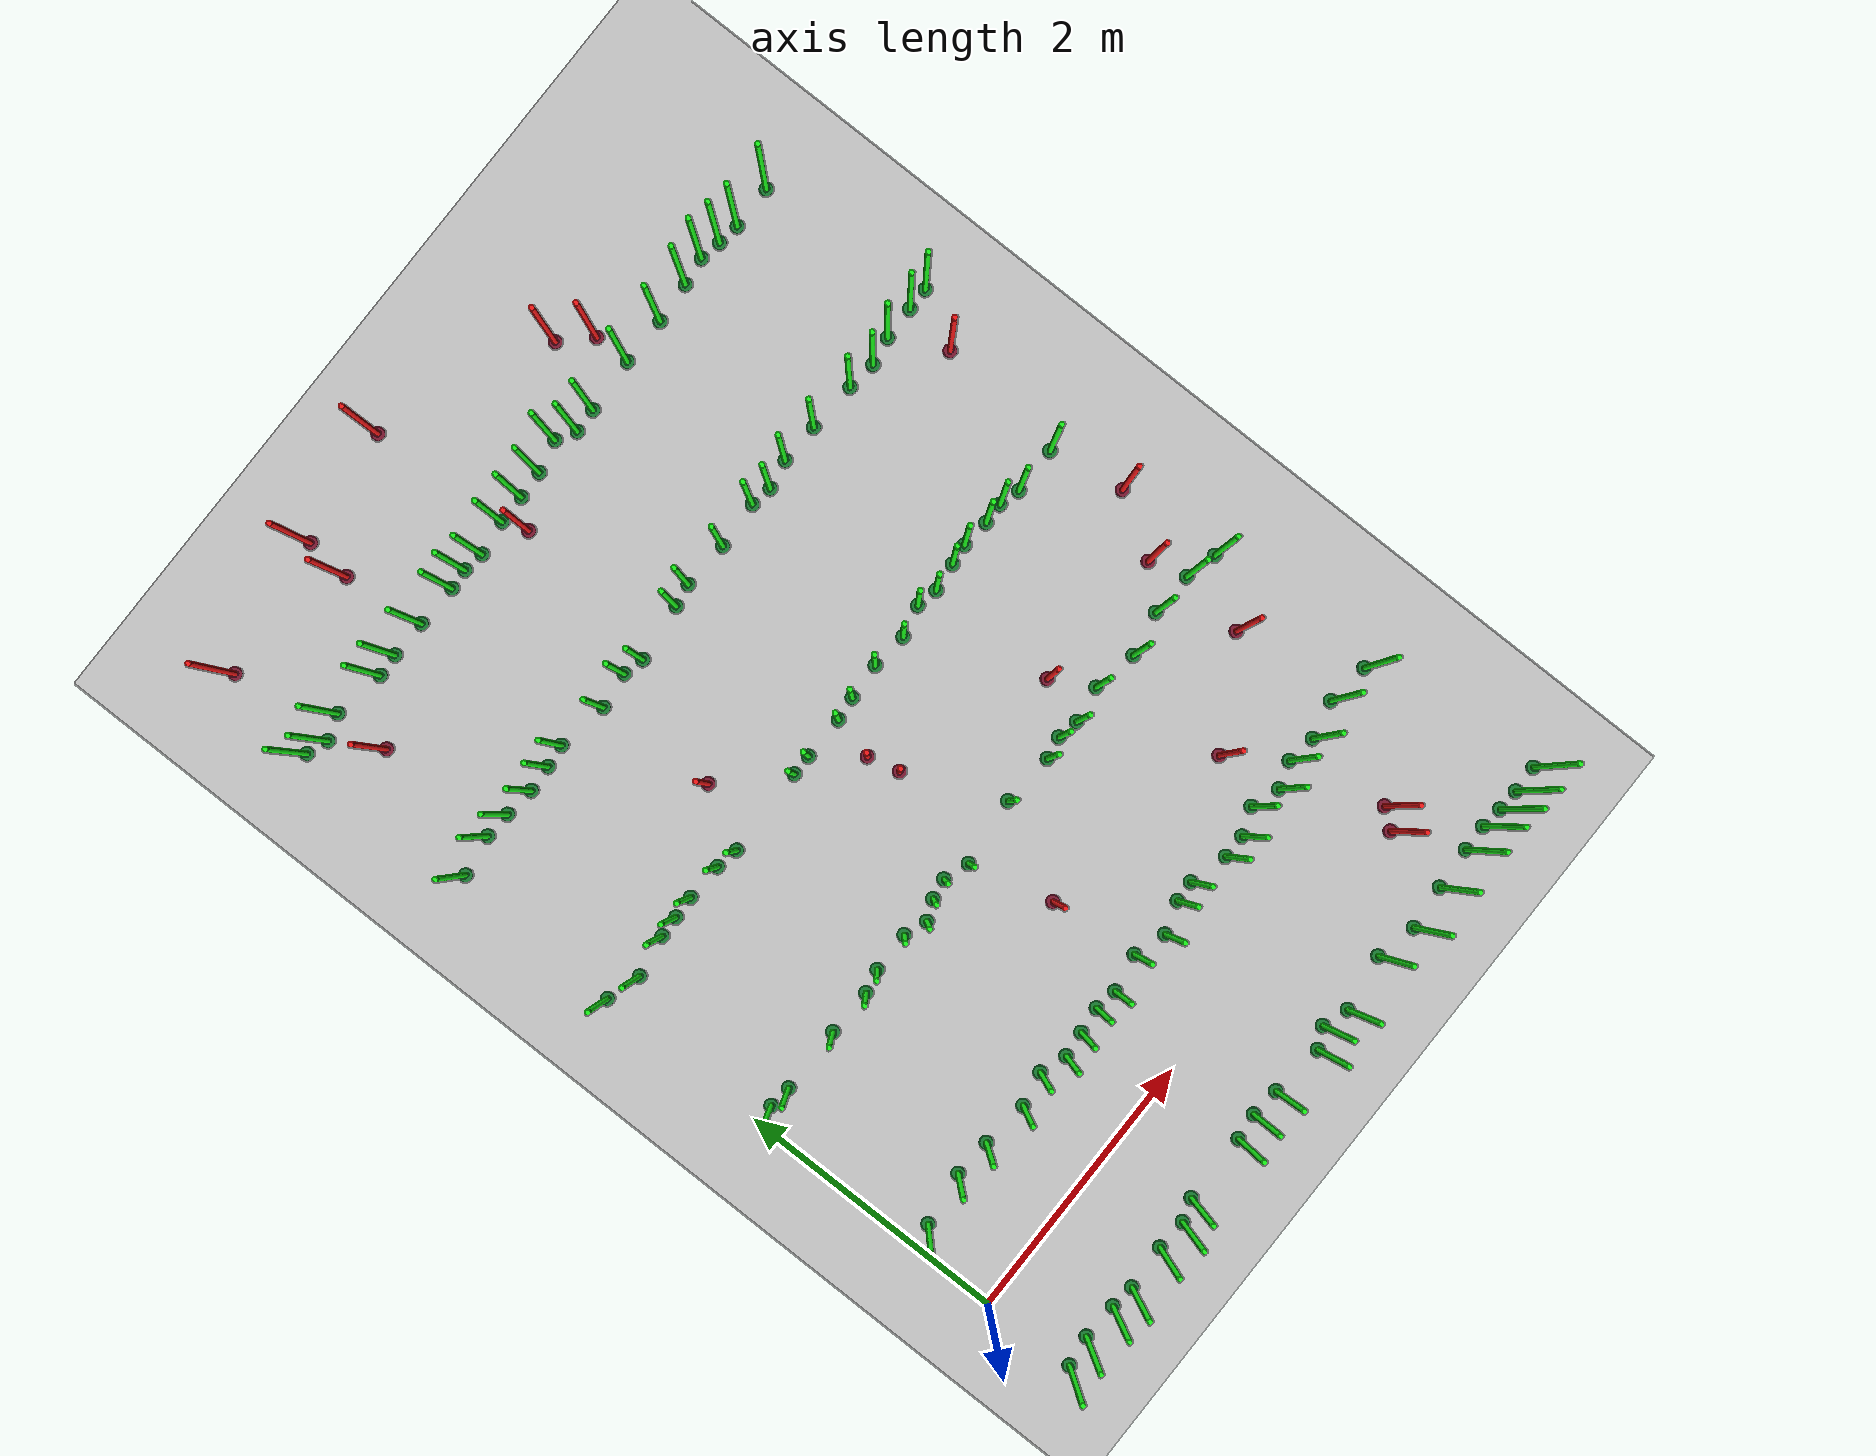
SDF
<sdf version="1.4">
 <world name="default">
  <include><uri>model://ground_plane</uri></include>
  <include><uri>model://sun</uri></include>
  <model name="plantgreen_0_1">
   <include><uri>model://plantgreen</uri></include>
   <pose>4.58638884047 -0.632924305931 0 0 0 0</pose>
  </model>
  <model name="plantgreen_0_2">
   <include><uri>model://plantgreen</uri></include>
   <pose>3.04990251096 -0.677343053647 0 0 0 0</pose>
  </model>
  <model name="plantgreen_0_4">
   <include><uri>model://plantgreen</uri></include>
   <pose>4.08292224134 -0.656828475842 0 0 0 0</pose>
  </model>
  <model name="plantgreen_0_5">
   <include><uri>model://plantgreen</uri></include>
   <pose>1.24277537879 -0.68476654569 0 0 0 0</pose>
  </model>
  <model name="plantgreen_0_7">
   <include><uri>model://plantgreen</uri></include>
   <pose>2.10647523491 -0.61410129636 0 0 0 0</pose>
  </model>
  <model name="plantgreen_0_9">
   <include><uri>model://plantgreen</uri></include>
   <pose>3.46152146136 -0.616740493605 0 0 0 0</pose>
  </model>
  <model name="plantgreen_0_10">
   <include><uri>model://plantgreen</uri></include>
   <pose>4.39014670274 -0.637603284323 0 0 0 0</pose>
  </model>
  <model name="plantgreen_0_11">
   <include><uri>model://plantgreen</uri></include>
   <pose>1.01525369746 -0.669760085934 0 0 0 0</pose>
  </model>
  <model name="plantgreen_0_14">
   <include><uri>model://plantgreen</uri></include>
   <pose>1.91346370611 -0.634758447583 0 0 0 0</pose>
  </model>
  <model name="plantgreen_0_16">
   <include><uri>model://plantgreen</uri></include>
   <pose>2.71403882308 -0.684665693558 0 0 0 0</pose>
  </model>
  <model name="plantgreen_0_18">
   <include><uri>model://plantgreen</uri></include>
   <pose>3.76025180287 -0.686493607441 0 0 0 0</pose>
  </model>
  <model name="plantgreen_0_21">
   <include><uri>model://plantgreen</uri></include>
   <pose>0.51066838098 -0.664701882412 0 0 0 0</pose>
  </model>
  <model name="plantgreen_0_23">
   <include><uri>model://plantgreen</uri></include>
   <pose>4.91010683227 -0.659971757715 0 0 0 0</pose>
  </model>
  <model name="plantgreen_0_26">
   <include><uri>model://plantgreen</uri></include>
   <pose>0.688967956885 -0.686746735415 0 0 0 0</pose>
  </model>
  <model name="plantgreen_0_27">
   <include><uri>model://plantgreen</uri></include>
   <pose>0.241065624145 -0.650282534506 0 0 0 0</pose>
  </model>
  <model name="plantgreen_0_31">
   <include><uri>model://plantgreen</uri></include>
   <pose>0.0183708667664 -0.68053280253 0 0 0 0</pose>
  </model>
  <model name="plantgreen_0_35">
   <include><uri>model://plantgreen</uri></include>
   <pose>4.74921922872 -0.652213403504 0 0 0 0</pose>
  </model>
  <model name="plantgreen_0_36">
   <include><uri>model://plantgreen</uri></include>
   <pose>1.40568710758 -0.631648553476 0 0 0 0</pose>
  </model>
  <model name="plantgreen_0_38">
   <include><uri>model://plantgreen</uri></include>
   <pose>2.3215394255 -0.634911119721 0 0 0 0</pose>
  </model>
  <model name="plantgreen_0_39">
   <include><uri>model://plantgreen</uri></include>
   <pose>2.86183952858 -0.612077400394 0 0 0 0</pose>
  </model>
  <model name="plantgreen_0_40">
   <include><uri>model://plantgreen</uri></include>
   <pose>5.10990452862 -0.654139514127 0 0 0 0</pose>
  </model>
  <model name="plantgreen_1_3">
   <include><uri>model://plantgreen</uri></include>
   <pose>0.563810435909 0.699440597573 0 0 0 0</pose>
  </model>
  <model name="plantgreen_1_5">
   <include><uri>model://plantgreen</uri></include>
   <pose>2.45347345788 0.679203140674 0 0 0 0</pose>
  </model>
  <model name="plantgreen_1_6">
   <include><uri>model://plantgreen</uri></include>
   <pose>1.19171325414 0.639142287754 0 0 0 0</pose>
  </model>
  <model name="plantgreen_1_8">
   <include><uri>model://plantgreen</uri></include>
   <pose>4.12620090517 0.664539253938 0 0 0 0</pose>
  </model>
  <model name="plantgreen_1_10">
   <include><uri>model://plantgreen</uri></include>
   <pose>3.07140674714 0.682277987979 0 0 0 0</pose>
  </model>
  <model name="plantgreen_1_11">
   <include><uri>model://plantgreen</uri></include>
   <pose>1.63229563706 0.617064051982 0 0 0 0</pose>
  </model>
  <model name="plantgreen_1_12">
   <include><uri>model://plantgreen</uri></include>
   <pose>3.52843498329 0.600474102138 0 0 0 0</pose>
  </model>
  <model name="plantgreen_1_13">
   <include><uri>model://plantgreen</uri></include>
   <pose>2.91640928709 0.673971403952 0 0 0 0</pose>
  </model>
  <model name="plantgreen_1_17">
   <include><uri>model://plantgreen</uri></include>
   <pose>1.43822415015 0.686914898581 0 0 0 0</pose>
  </model>
  <model name="plantgreen_1_18">
   <include><uri>model://plantgreen</uri></include>
   <pose>4.61684899354 0.694774414736 0 0 0 0</pose>
  </model>
  <model name="plantgreen_1_20">
   <include><uri>model://plantgreen</uri></include>
   <pose>1.81928062466 0.636064226267 0 0 0 0</pose>
  </model>
  <model name="plantgreen_1_22">
   <include><uri>model://plantgreen</uri></include>
   <pose>0.84354736408 0.678765734478 0 0 0 0</pose>
  </model>
  <model name="plantgreen_1_25">
   <include><uri>model://plantgreen</uri></include>
   <pose>2.68730098996 0.600827423517 0 0 0 0</pose>
  </model>
  <model name="plantgreen_1_29">
   <include><uri>model://plantgreen</uri></include>
   <pose>0.173604911993 0.648206277962 0 0 0 0</pose>
  </model>
  <model name="plantgreen_1_30">
   <include><uri>model://plantgreen</uri></include>
   <pose>2.01187975725 0.65622808343 0 0 0 0</pose>
  </model>
  <model name="plantgreen_1_32">
   <include><uri>model://plantgreen</uri></include>
   <pose>2.17762227713 0.627552524636 0 0 0 0</pose>
  </model>
  <model name="plantgreen_1_33">
   <include><uri>model://plantgreen</uri></include>
   <pose>4.34069117006 0.633602883182 0 0 0 0</pose>
  </model>
  <model name="plantgreen_1_35">
   <include><uri>model://plantgreen</uri></include>
   <pose>3.3523197135 0.603153385538 0 0 0 0</pose>
  </model>
  <model name="plantgreen_1_38">
   <include><uri>model://plantgreen</uri></include>
   <pose>3.93231418086 0.601803648086 0 0 0 0</pose>
  </model>
  <model name="plantgreen_1_39">
   <include><uri>model://plantgreen</uri></include>
   <pose>4.93192638013 0.653964585191 0 0 0 0</pose>
  </model>
  <model name="plantgreen_1_40">
   <include><uri>model://plantgreen</uri></include>
   <pose>3.72382907643 0.676130112694 0 0 0 0</pose>
  </model>
  <model name="plantgreen_2_1">
   <include><uri>model://plantgreen</uri></include>
   <pose>2.24173354182 1.93336143418 0 0 0 0</pose>
  </model>
  <model name="plantgreen_2_2">
   <include><uri>model://plantgreen</uri></include>
   <pose>0.142823846476 1.96701807127 0 0 0 0</pose>
  </model>
  <model name="plantgreen_2_3">
   <include><uri>model://plantgreen</uri></include>
   <pose>3.70807792421 1.99380703968 0 0 0 0</pose>
  </model>
  <model name="plantgreen_2_4">
   <include><uri>model://plantgreen</uri></include>
   <pose>2.73735866542 1.98566935251 0 0 0 0</pose>
  </model>
  <model name="plantgreen_2_5">
   <include><uri>model://plantgreen</uri></include>
   <pose>1.30029293948 1.97362183641 0 0 0 0</pose>
  </model>
  <model name="plantgreen_2_6">
   <include><uri>model://plantgreen</uri></include>
   <pose>4.35446407608 1.99057090078 0 0 0 0</pose>
  </model>
  <model name="plantgreen_2_8">
   <include><uri>model://plantgreen</uri></include>
   <pose>0.787808935991 1.94856739351 0 0 0 0</pose>
  </model>
  <model name="plantgreen_2_10">
   <include><uri>model://plantgreen</uri></include>
   <pose>4.67433905331 1.9751620563 0 0 0 0</pose>
  </model>
  <model name="plantgreen_2_11">
   <include><uri>model://plantgreen</uri></include>
   <pose>2.05662670568 1.99840995765 0 0 0 0</pose>
  </model>
  <model name="plantgreen_2_14">
   <include><uri>model://plantgreen</uri></include>
   <pose>4.0331431397 1.93012645517 0 0 0 0</pose>
  </model>
  <model name="plantgreen_2_18">
   <include><uri>model://plantgreen</uri></include>
   <pose>1.90704084354 1.97395833391 0 0 0 0</pose>
  </model>
  <model name="plantgreen_2_25">
   <include><uri>model://plantgreen</uri></include>
   <pose>0.307373436892 1.94776415561 0 0 0 0</pose>
  </model>
  <model name="plantgreen_2_27">
   <include><uri>model://plantgreen</uri></include>
   <pose>3.12724042903 1.95406817444 0 0 0 0</pose>
  </model>
  <model name="plantgreen_2_28">
   <include><uri>model://plantgreen</uri></include>
   <pose>1.76223837242 1.91263957304 0 0 0 0</pose>
  </model>
  <model name="plantgreen_2_34">
   <include><uri>model://plantgreen</uri></include>
   <pose>4.90600232266 1.91522711182 0 0 0 0</pose>
  </model>
  <model name="plantgreen_2_36">
   <include><uri>model://plantgreen</uri></include>
   <pose>1.13133703514 1.93645383445 0 0 0 0</pose>
  </model>
  <model name="plantgreen_2_37">
   <include><uri>model://plantgreen</uri></include>
   <pose>1.59636541818 1.97584124529 0 0 0 0</pose>
  </model>
  <model name="plantgreen_2_38">
   <include><uri>model://plantgreen</uri></include>
   <pose>3.44433151887 1.95285885714 0 0 0 0</pose>
  </model>
  <model name="plantgreen_2_40">
   <include><uri>model://plantgreen</uri></include>
   <pose>3.2885103927 1.9822147795 0 0 0 0</pose>
  </model>
  <model name="plantgreen_3_5">
   <include><uri>model://plantgreen</uri></include>
   <pose>1.17805137044 3.24605731804 0 0 0 0</pose>
  </model>
  <model name="plantgreen_3_6">
   <include><uri>model://plantgreen</uri></include>
   <pose>2.14159951642 3.22673520764 0 0 0 0</pose>
  </model>
  <model name="plantgreen_3_7">
   <include><uri>model://plantgreen</uri></include>
   <pose>2.90089314793 3.25450537241 0 0 0 0</pose>
  </model>
  <model name="plantgreen_3_10">
   <include><uri>model://plantgreen</uri></include>
   <pose>2.63351799897 3.24053169494 0 0 0 0</pose>
  </model>
  <model name="plantgreen_3_11">
   <include><uri>model://plantgreen</uri></include>
   <pose>4.77188597121 3.22709420384 0 0 0 0</pose>
  </model>
  <model name="plantgreen_3_12">
   <include><uri>model://plantgreen</uri></include>
   <pose>4.42922811214 3.22443304119 0 0 0 0</pose>
  </model>
  <model name="plantgreen_3_14">
   <include><uri>model://plantgreen</uri></include>
   <pose>2.4596271787 3.22086856902 0 0 0 0</pose>
  </model>
  <model name="plantgreen_3_15">
   <include><uri>model://plantgreen</uri></include>
   <pose>3.55364685734 3.24619451029 0 0 0 0</pose>
  </model>
  <model name="plantgreen_3_16">
   <include><uri>model://plantgreen</uri></include>
   <pose>0.275328775478 3.20107792337 0 0 0 0</pose>
  </model>
  <model name="plantgreen_3_17">
   <include><uri>model://plantgreen</uri></include>
   <pose>0.0232918790757 3.27590269904 0 0 0 0</pose>
  </model>
  <model name="plantgreen_3_19">
   <include><uri>model://plantgreen</uri></include>
   <pose>0.580605547833 3.2494066062 0 0 0 0</pose>
  </model>
  <model name="plantgreen_3_20">
   <include><uri>model://plantgreen</uri></include>
   <pose>4.12194975641 3.26476285611 0 0 0 0</pose>
  </model>
  <model name="plantgreen_3_26">
   <include><uri>model://plantgreen</uri></include>
   <pose>3.76097844311 3.26923999005 0 0 0 0</pose>
  </model>
  <model name="plantgreen_3_27">
   <include><uri>model://plantgreen</uri></include>
   <pose>0.738071150394 3.2557321861 0 0 0 0</pose>
  </model>
  <model name="plantgreen_3_28">
   <include><uri>model://plantgreen</uri></include>
   <pose>1.34441264836 3.21430471133 0 0 0 0</pose>
  </model>
  <model name="plantgreen_3_29">
   <include><uri>model://plantgreen</uri></include>
   <pose>1.98799817809 3.22791361887 0 0 0 0</pose>
  </model>
  <model name="plantgreen_3_30">
   <include><uri>model://plantgreen</uri></include>
   <pose>3.9124161389 3.28590705775 0 0 0 0</pose>
  </model>
  <model name="plantgreen_3_33">
   <include><uri>model://plantgreen</uri></include>
   <pose>3.39621238548 3.27899231808 0 0 0 0</pose>
  </model>
  <model name="plantgreen_3_35">
   <include><uri>model://plantgreen</uri></include>
   <pose>3.16891331261 3.22616827323 0 0 0 0</pose>
  </model>
  <model name="plantgreen_3_36">
   <include><uri>model://plantgreen</uri></include>
   <pose>4.27739569579 3.26714855011 0 0 0 0</pose>
  </model>
  <model name="plantgreen_3_37">
   <include><uri>model://plantgreen</uri></include>
   <pose>0.903657834698 3.26111091222 0 0 0 0</pose>
  </model>
  <model name="plantgreen_4_2">
   <include><uri>model://plantgreen</uri></include>
   <pose>2.38235986216 4.55642555765 0 0 0 0</pose>
  </model>
  <model name="plantgreen_4_3">
   <include><uri>model://plantgreen</uri></include>
   <pose>1.96081905803 4.50962413323 0 0 0 0</pose>
  </model>
  <model name="plantgreen_4_4">
   <include><uri>model://plantgreen</uri></include>
   <pose>1.16730645107 4.58015763049 0 0 0 0</pose>
  </model>
  <model name="plantgreen_4_5">
   <include><uri>model://plantgreen</uri></include>
   <pose>0.578428454796 4.57556919939 0 0 0 0</pose>
  </model>
  <model name="plantgreen_4_6">
   <include><uri>model://plantgreen</uri></include>
   <pose>2.89668821041 4.56234477298 0 0 0 0</pose>
  </model>
  <model name="plantgreen_4_8">
   <include><uri>model://plantgreen</uri></include>
   <pose>0.802242856742 4.5496657282 0 0 0 0</pose>
  </model>
  <model name="plantgreen_4_11">
   <include><uri>model://plantgreen</uri></include>
   <pose>0.998873037751 4.56182962809 0 0 0 0</pose>
  </model>
  <model name="plantgreen_4_14">
   <include><uri>model://plantgreen</uri></include>
   <pose>4.94146052017 4.56602913707 0 0 0 0</pose>
  </model>
  <model name="plantgreen_4_17">
   <include><uri>model://plantgreen</uri></include>
   <pose>5.11037256992 4.56685807724 0 0 0 0</pose>
  </model>
  <model name="plantgreen_4_18">
   <include><uri>model://plantgreen</uri></include>
   <pose>3.24214251899 4.58079681763 0 0 0 0</pose>
  </model>
  <model name="plantgreen_4_21">
   <include><uri>model://plantgreen</uri></include>
   <pose>4.69517820709 4.56385050205 0 0 0 0</pose>
  </model>
  <model name="plantgreen_4_22">
   <include><uri>model://plantgreen</uri></include>
   <pose>4.27429719478 4.55512702151 0 0 0 0</pose>
  </model>
  <model name="plantgreen_4_25">
   <include><uri>model://plantgreen</uri></include>
   <pose>1.80739261079 4.54773981916 0 0 0 0</pose>
  </model>
  <model name="plantgreen_4_26">
   <include><uri>model://plantgreen</uri></include>
   <pose>2.54837755789 4.58454360764 0 0 0 0</pose>
  </model>
  <model name="plantgreen_4_27">
   <include><uri>model://plantgreen</uri></include>
   <pose>1.54320832004 4.51747585249 0 0 0 0</pose>
  </model>
  <model name="plantgreen_4_28">
   <include><uri>model://plantgreen</uri></include>
   <pose>0.081949040013 4.54322831467 0 0 0 0</pose>
  </model>
  <model name="plantgreen_4_29">
   <include><uri>model://plantgreen</uri></include>
   <pose>3.9086646969 4.57921015207 0 0 0 0</pose>
  </model>
  <model name="plantgreen_4_30">
   <include><uri>model://plantgreen</uri></include>
   <pose>3.40088047663 4.55301886222 0 0 0 0</pose>
  </model>
  <model name="plantgreen_4_33">
   <include><uri>model://plantgreen</uri></include>
   <pose>4.49014610242 4.52819949592 0 0 0 0</pose>
  </model>
  <model name="plantgreen_4_35">
   <include><uri>model://plantgreen</uri></include>
   <pose>3.61231628407 4.59105971008 0 0 0 0</pose>
  </model>
  <model name="plantgreen_4_40">
   <include><uri>model://plantgreen</uri></include>
   <pose>0.380578695255 4.58899430864 0 0 0 0</pose>
  </model>
  <model name="plantgreen_5_1">
   <include><uri>model://plantgreen</uri></include>
   <pose>0.779436721826 5.83335874478 0 0 0 0</pose>
  </model>
  <model name="plantgreen_5_2">
   <include><uri>model://plantgreen</uri></include>
   <pose>2.75634168168 5.89821436399 0 0 0 0</pose>
  </model>
  <model name="plantgreen_5_3">
   <include><uri>model://plantgreen</uri></include>
   <pose>0.215671148457 5.83461131526 0 0 0 0</pose>
  </model>
  <model name="plantgreen_5_4">
   <include><uri>model://plantgreen</uri></include>
   <pose>0.401060452086 5.8973090942 0 0 0 0</pose>
  </model>
  <model name="plantgreen_5_6">
   <include><uri>model://plantgreen</uri></include>
   <pose>3.47658580682 5.84507406159 0 0 0 0</pose>
  </model>
  <model name="plantgreen_5_13">
   <include><uri>model://plantgreen</uri></include>
   <pose>3.82918259294 5.84140302282 0 0 0 0</pose>
  </model>
  <model name="plantgreen_5_14">
   <include><uri>model://plantgreen</uri></include>
   <pose>2.1020416148 5.83438743963 0 0 0 0</pose>
  </model>
  <model name="plantgreen_5_18">
   <include><uri>model://plantgreen</uri></include>
   <pose>1.69068098564 5.82827652131 0 0 0 0</pose>
  </model>
  <model name="plantgreen_5_19">
   <include><uri>model://plantgreen</uri></include>
   <pose>0.0595230063811 5.89123764703 0 0 0 0</pose>
  </model>
  <model name="plantgreen_5_20">
   <include><uri>model://plantgreen</uri></include>
   <pose>2.89592513787 5.81571620038 0 0 0 0</pose>
  </model>
  <model name="plantgreen_5_22">
   <include><uri>model://plantgreen</uri></include>
   <pose>4.33746040246 5.88736578879 0 0 0 0</pose>
  </model>
  <model name="plantgreen_5_24">
   <include><uri>model://plantgreen</uri></include>
   <pose>4.97849733754 5.83531567484 0 0 0 0</pose>
  </model>
  <model name="plantgreen_5_25">
   <include><uri>model://plantgreen</uri></include>
   <pose>4.13114841382 5.86260327982 0 0 0 0</pose>
  </model>
  <model name="plantgreen_5_26">
   <include><uri>model://plantgreen</uri></include>
   <pose>2.3130400186 5.83627113474 0 0 0 0</pose>
  </model>
  <model name="plantgreen_5_27">
   <include><uri>model://plantgreen</uri></include>
   <pose>2.517953835 5.84501024085 0 0 0 0</pose>
  </model>
  <model name="plantgreen_5_28">
   <include><uri>model://plantgreen</uri></include>
   <pose>4.65868395705 5.83250222309 0 0 0 0</pose>
  </model>
  <model name="plantgreen_5_30">
   <include><uri>model://plantgreen</uri></include>
   <pose>3.07524693142 5.82376714968 0 0 0 0</pose>
  </model>
  <model name="plantgreen_5_32">
   <include><uri>model://plantgreen</uri></include>
   <pose>1.53978490559 5.81960853618 0 0 0 0</pose>
  </model>
  <model name="plantgreen_5_33">
   <include><uri>model://plantgreen</uri></include>
   <pose>1.84597354944 5.80370042537 0 0 0 0</pose>
  </model>
  <model name="plantgreen_5_34">
   <include><uri>model://plantgreen</uri></include>
   <pose>4.49713950402 5.85698964376 0 0 0 0</pose>
  </model>
  <model name="plantgreen_5_36">
   <include><uri>model://plantgreen</uri></include>
   <pose>0.948386098955 5.84058108458 0 0 0 0</pose>
  </model>
  <model name="plantgreen_5_38">
   <include><uri>model://plantgreen</uri></include>
   <pose>1.22568409962 5.83329849755 0 0 0 0</pose>
  </model>
  <model name="plantred_3">
   <include><uri>model://plantred</uri></include>
   <pose>0.180828832814 6.60799307896 0 0 0 0</pose>
  </model>
  <model name="plantred_5">
   <include><uri>model://plantred</uri></include>
   <pose>3.280100668 6.31121006316 0 0 0 0</pose>
  </model>
  <model name="plantred_6">
   <include><uri>model://plantred</uri></include>
   <pose>4.59244295047 1.48371781239 0 0 0 0</pose>
  </model>
  <model name="plantred_7">
   <include><uri>model://plantred</uri></include>
   <pose>1.16077154048 6.4266900335 0 0 0 0</pose>
  </model>
  <model name="plantred_11">
   <include><uri>model://plantred</uri></include>
   <pose>2.38501737155 2.9139790657 0 0 0 0</pose>
  </model>
  <model name="plantred_12">
   <include><uri>model://plantred</uri></include>
   <pose>2.04871371601 6.86400968576 0 0 0 0</pose>
  </model>
  <model name="plantred_13">
   <include><uri>model://plantred</uri></include>
   <pose>4.59535951752 2.24277740051 0 0 0 0</pose>
  </model>
  <model name="plantred_14">
   <include><uri>model://plantred</uri></include>
   <pose>4.86813184759 2.67888830199 0 0 0 0</pose>
  </model>
  <model name="plantred_17">
   <include><uri>model://plantred</uri></include>
   <pose>2.16581085146 5.65533379999 0 0 0 0</pose>
  </model>
  <model name="plantred_18">
   <include><uri>model://plantred</uri></include>
   <pose>4.28335205754 -0.0284423620526 0 0 0 0</pose>
  </model>
  <model name="plantred_20">
   <include><uri>model://plantred</uri></include>
   <pose>2.44078127389 2.68249061835 0 0 0 0</pose>
  </model>
  <model name="plantred_24">
   <include><uri>model://plantred</uri></include>
   <pose>4.88655579013 4.17631741963 0 0 0 0</pose>
  </model>
  <model name="plantred_25">
   <include><uri>model://plantred</uri></include>
   <pose>1.18858214509 6.76001141782 0 0 0 0</pose>
  </model>
  <model name="plantred_33">
   <include><uri>model://plantred</uri></include>
   <pose>3.54860191481 2.28656694402 0 0 0 0</pose>
  </model>
  <model name="plantred_34">
   <include><uri>model://plantred</uri></include>
   <pose>3.86168304151 1.05799983962 0 0 0 0</pose>
  </model>
  <model name="plantred_40">
   <include><uri>model://plantred</uri></include>
   <pose>1.57709306793 3.64159891305 0 0 0 0</pose>
  </model>
  <model name="plantred_43">
   <include><uri>model://plantred</uri></include>
   <pose>4.17467854945 -0.16338733258 0 0 0 0</pose>
  </model>
  <model name="plantred_45">
   <include><uri>model://plantred</uri></include>
   <pose>0.416649325768 5.48901593117 0 0 0 0</pose>
  </model>
  <model name="plantred_46">
   <include><uri>model://plantred</uri></include>
   <pose>3.47816988133 6.10990718604 0 0 0 0</pose>
  </model>
  <model name="plantred_50">
   <include><uri>model://plantred</uri></include>
   <pose>2.39225644306 1.32721765861 0 0 0 0</pose>
  </model>
 </world>
</sdf>
